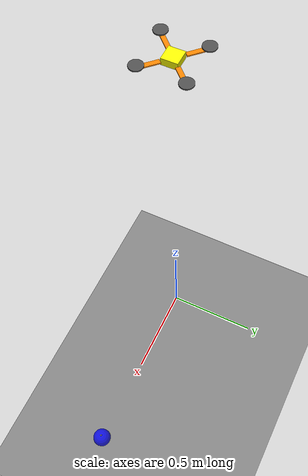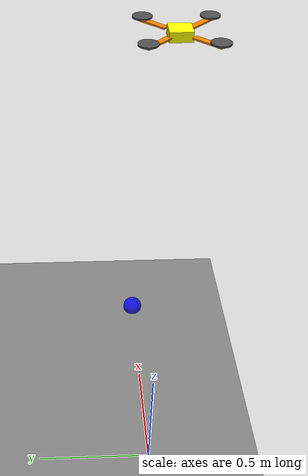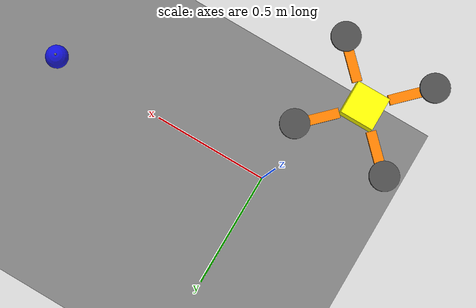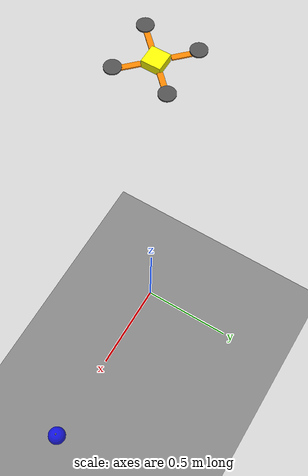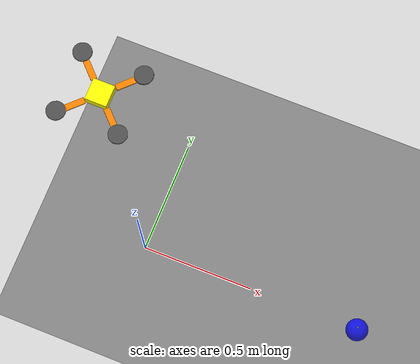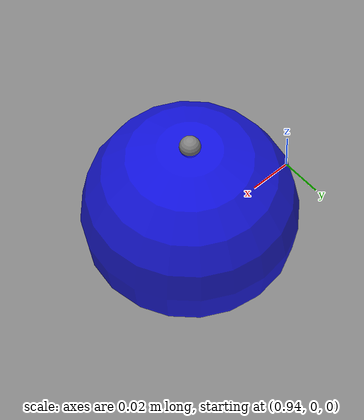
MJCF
<mujoco model="Quadrotor Acro Simulation">
  <compiler angle="radian" meshdir="." />

  <option timestep="0.003" gravity="0 0 -9.81">
    <flag energy="enable" contact="enable"/>
  </option>

  <asset>
    <texture name="texchecker" type="2d" builtin="checker" width="512" height="512" rgb1="0.8 0.8 0.8" rgb2="0.2 0.2 0.2" />
    <material name="matchecker" texture="texchecker" texrepeat="4 4" reflectance="0.2" />
  </asset>

  <worldbody>
    <light pos="0 0 1.5" dir="0 0 -1" directional="true"/>
    <geom name="floor" type="plane" size="10 10 0.1" material="matchecker" condim="3"/>

    <body name="drone_1" pos="0 0 2" euler="0 0 0">
      <joint name="drone_1" type="free" damping="0.001" armature="0" pos="0 0 0"/>

      <geom name="drone_1_core" type="box" size="0.035 0.035 0.015" rgba="1.0 1.0 0.0 1.0" mass="1.04"/>

      <geom name="drone_1_a00" type="box" pos=".071 0.071 0.0" size="0.05 0.01 0.0025" quat=".924 0 0 0.383" rgba="1 0.5 0 1" mass=".035"/>
      <geom name="drone_1_a10" type="box" pos=".071 -0.071 0.0" size="0.05 0.01 0.0025" quat=".383 0 0 0.924" rgba="1 0.5 0 1" mass=".035"/>
      <geom name="drone_1_a20" type="box" pos="-0.071 -0.071 0.0" size="0.05 0.01 0.0025" quat="-.383 0 0 0.924" rgba="1 0.5 0 1" mass=".035"/>
      <geom name="drone_1_a30" type="box" pos="-.071 0.071 0.0" size="0.05 0.01 0.0025" quat=".924 0 0 -0.383" rgba="1 0.5 0 1" mass=".035"/>

      <geom name="drone_1_thruster00" type="cylinder" pos="0.1 0.1 0.01" size="0.03 0.0025" rgba="0.3 0.3 0.3 1" mass=".015"/>
      <geom name="drone_1_thruster10" type="cylinder" pos="0.1 -0.1 0.01" size="0.03 0.0025" rgba="0.3 0.3 0.3 1" mass=".015"/>
      <geom name="drone_1_thruster20" type="cylinder" pos="-0.1 -0.1 0.01" size="0.03 0.0025" rgba="0.3 0.3 0.3 1" mass=".015"/>
      <geom name="drone_1_thruster30" type="cylinder" pos="-0.1 0.1 0.01" size="0.03 0.0025" rgba="0.3 0.3 0.3 1" mass=".015"/>

      <site name="drone_1_imu" pos="0 0 0"/>
      <site name="drone_1_thrust" type="box" pos="0 0 0" size="0.035 0.035 0.015" rgba="0 1 1 0"/>
      <site name="drone_1_rateX" type="box" pos="0 0 0" size="0.035 0.035 0.015" rgba="0 1 1 0"/>
      <site name="drone_1_rateY" type="box" pos="0 0 0" size="0.035 0.035 0.015" rgba="0 1 1 0"/>
      <site name="drone_1_rateZ" type="box" pos="0 0 0" size="0.035 0.035 0.015" rgba="0 1 1 0"/>

      <camera name="drone_1_camera" pos="0.035 0 -0.015" euler="0 0 -1.57"/>
    </body>

    <body name="payload" pos="1 0 0.02">
      <joint type="free" damping="0.001"/>
      <geom type="sphere" size="0.05" rgba="0 0 1 0.8" mass="0.2"/>
      <site name="payload_connection_site" pos="0.0 0.0 0.05"/>
    </body>

  </worldbody>

  <actuator>
    <motor site="drone_1_thrust" name="drone_1_body_thrust" ctrllimited="true" ctrlrange="0 40.0" gear="0 0 1 0 0 0"/>
    <motor site="drone_1_rateX"  name="drone_1_x_moment" ctrllimited="true" ctrlrange="-0.5 0.5" gear="0 0 0 1 0 0"/>
    <motor site="drone_1_rateY"  name="drone_1_y_moment" ctrllimited="true" ctrlrange="-0.5 0.5" gear="0 0 0 0 1 0"/>
    <motor site="drone_1_rateZ"  name="drone_1_z_moment" ctrllimited="true" ctrlrange="-0.5 0.5" gear="0 0 0 0 0 1"/>
  </actuator>

  <sensor>
    <accelerometer name="drone_1_accel" site="drone_1_imu" />
    <gyro name="drone_1_gyro" site="drone_1_imu" />
  </sensor>
</mujoco>
